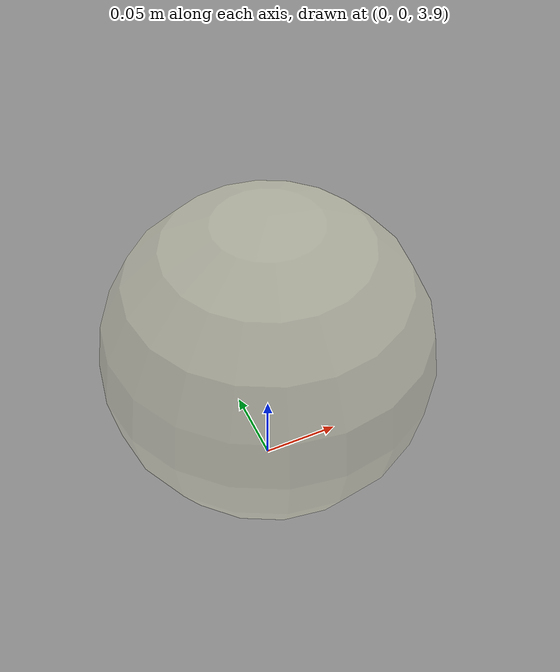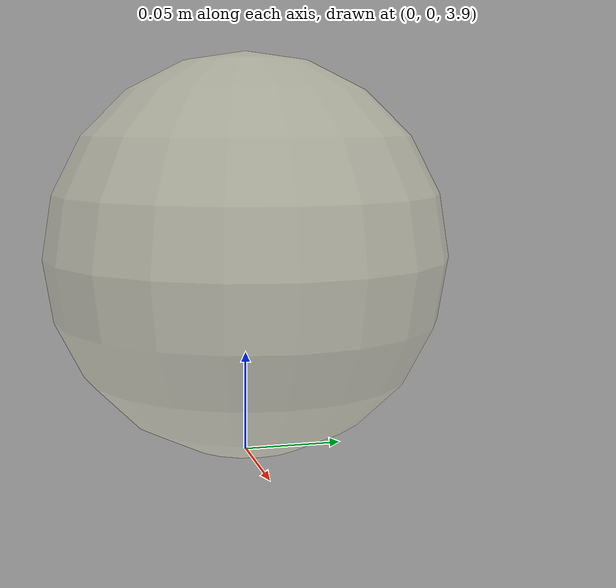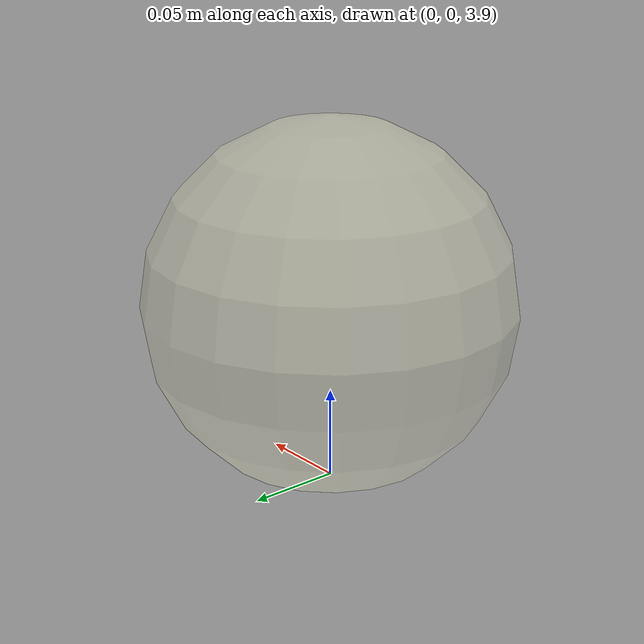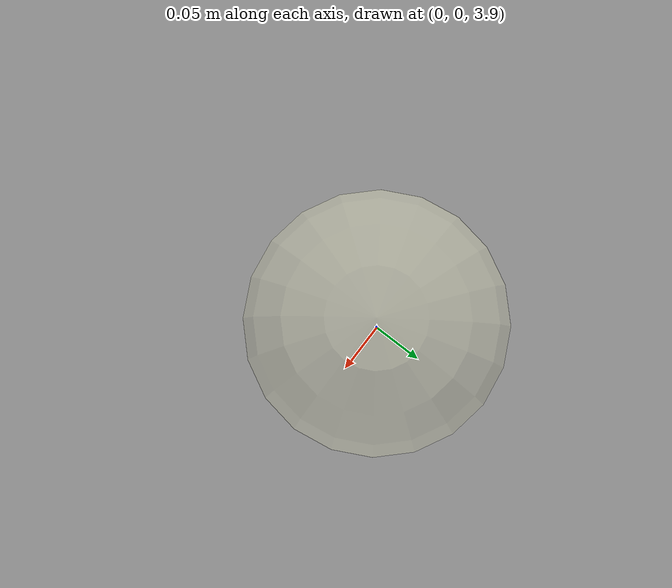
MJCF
<mujoco model="My Final Project">
  <option timestep="0.002" gravity="0 0 -9.81" />

  <asset>
    <texture name="grid" type="2d" builtin="checker" rgb1=".1 .2 .3" rgb2=".2 .3 .4" width="300" height="300" mark="edge" markrgb=".8 .8 .8" />
    <material name="grid_mat" texture="grid" texrepeat="1 1" texuniform="true" reflectance=".2" />
  </asset>

  <worldbody>
    <light pos="0 0 10" dir="0 0 -1" diffuse="0.8 0.8 0.8" />

    <geom name="floor" type="plane" size="10 10 .1" material="grid_mat" />

    <body name="default_light" pos="0 0 4">
        <joint type="free" name="default_light_joint"/>
        <light mode="trackcom" diffuse="0.8 0.8 0.8" specular="0.3 0.3 0.3" castshadow="true" dir="0 0 -1"/>
        <geom type="sphere" size="0.1" rgba="1 1 0.8 0.3" contype="0" conaffinity="0" group="1"/>
    </body>

  </worldbody>
</mujoco>
